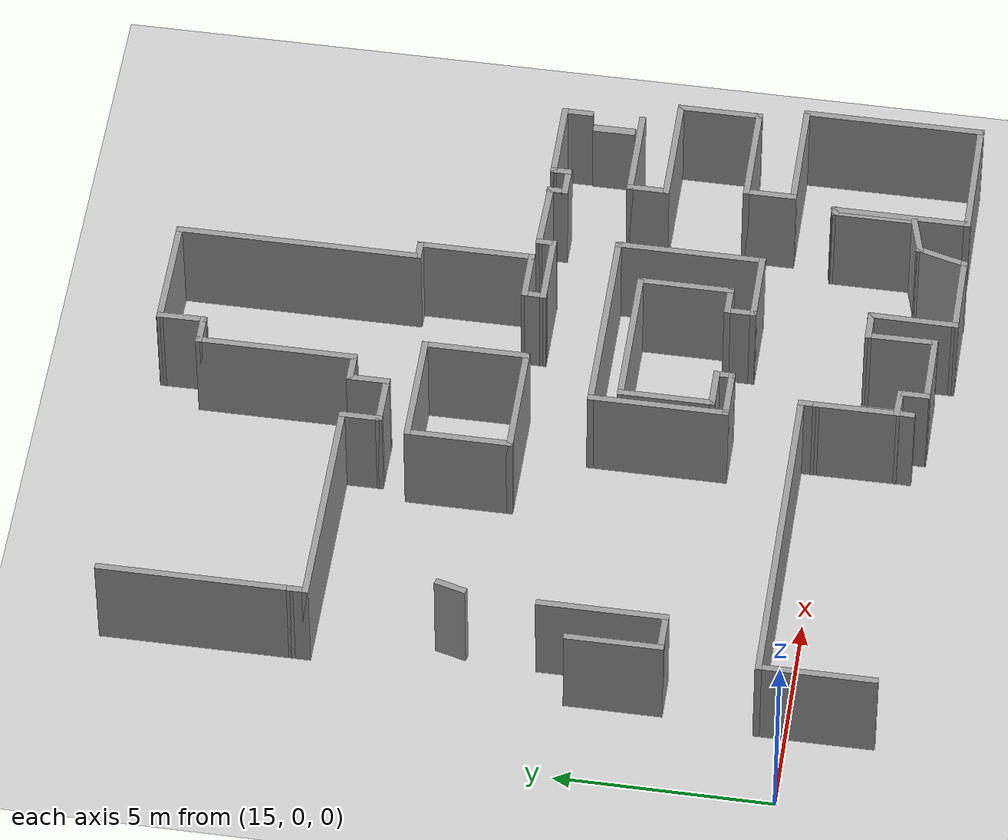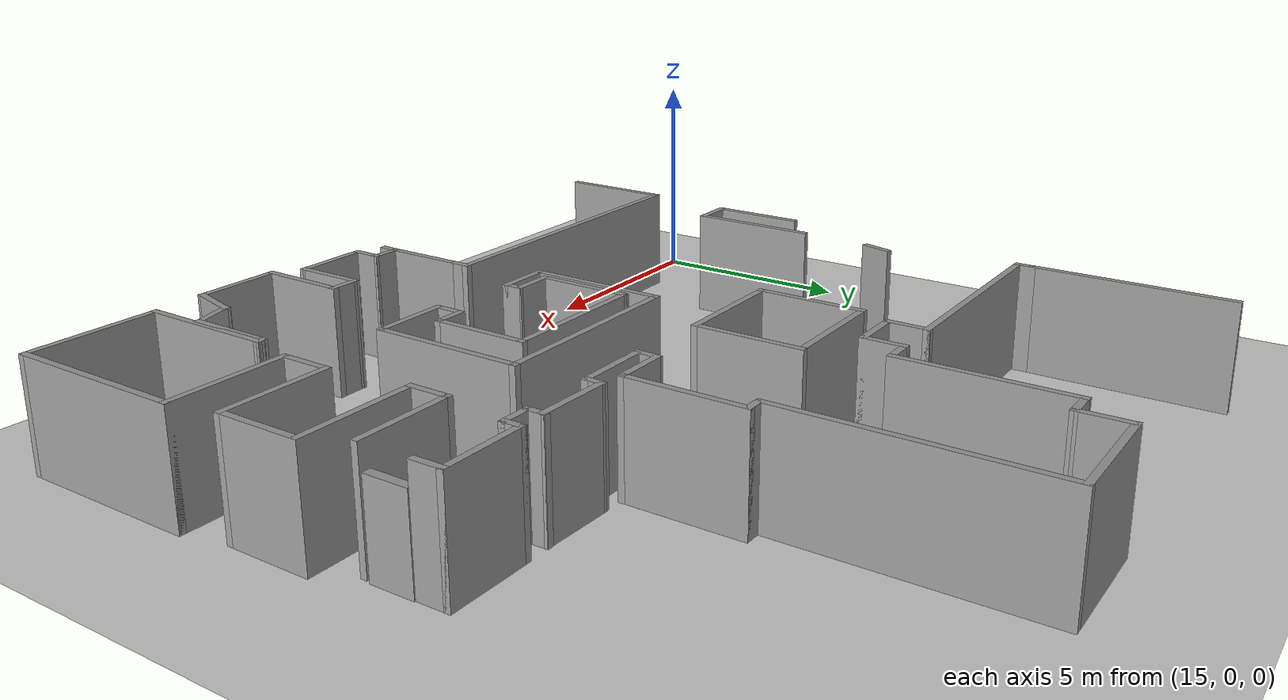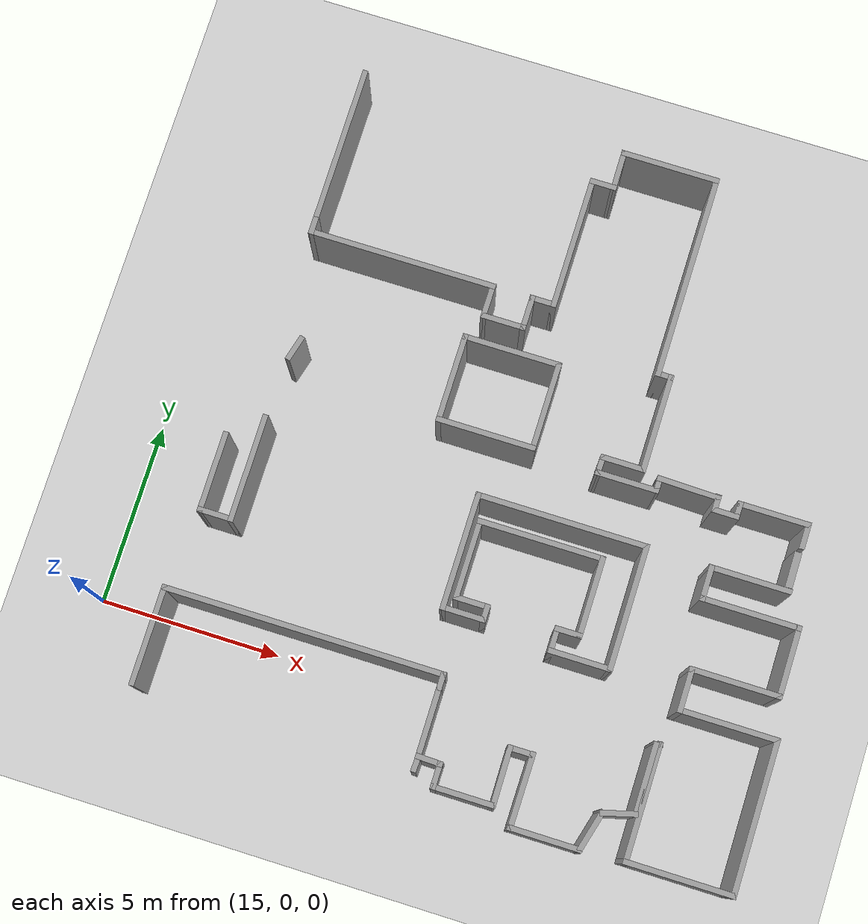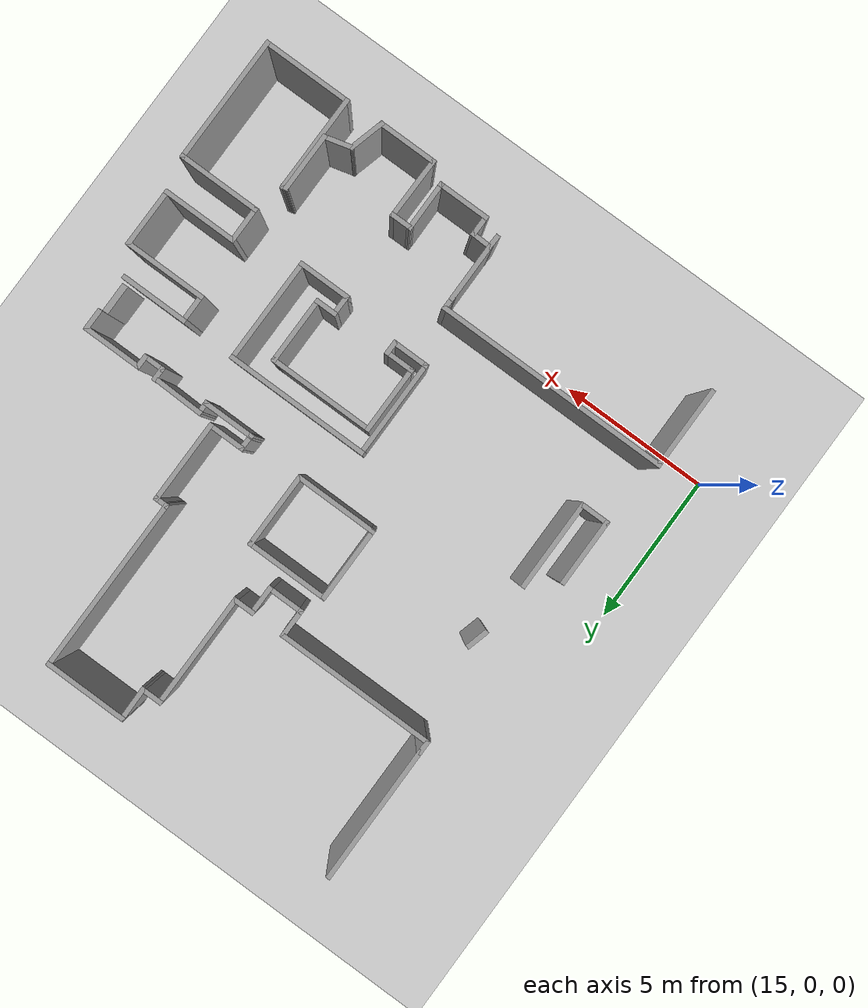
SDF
<sdf version="1.7">
 <world name="default">
  <model name="ground_plane">
   <static>1</static>
   <link name="link">
    <collision name="collision">
     <geometry><plane><normal>0 0 1</normal><size>100 100</size></plane></geometry>
     <surface><friction><ode><mu>100</mu><mu2>50</mu2></ode></friction></surface>
    </collision>
    <visual name="visual">
     <geometry><plane><normal>0 0 1</normal><size>100 100</size></plane></geometry>
     <material>
      <script><uri>file://media/materials/scripts/gazebo.material</uri><name>Gazebo/Grey</name></script>
     </material>
    </visual>
    <velocity_decay><linear>0</linear><angular>0</angular></velocity_decay>
   </link>
  </model>
  <model name="HandMade">
   <pose>-0.902363 5.97176 0 0 -0 0</pose>
   <link name="Door_2">
    <collision name="Door_2_Collision">
     <geometry><box><size>0.996178 0.2 2</size></box></geometry>
     <pose>0 0 1 0 -0 0</pose>
    </collision>
    <visual name="Door_2_Visual">
     <pose>0 0 1 0 -0 0</pose>
     <geometry><box><size>0.996178 0.2 2</size></box></geometry>
     <material>
      <script><uri>file://media/materials/scripts/gazebo.material</uri><name>Gazebo/Grey</name></script>
     </material>
    </visual>
    <pose>33.3267 0.090057 0 0 -0 1.57423</pose>
   </link>
   <link name="Wall_132">
    <collision name="Wall_132_Collision">
     <geometry><box><size>4.5 0.15 2.5</size></box></geometry>
     <pose>0 0 1.25 0 -0 0</pose>
    </collision>
    <visual name="Wall_132_Visual">
     <pose>0 0 1.25 0 -0 0</pose>
     <geometry><box><size>4.5 0.15 2.5</size></box></geometry>
     <material>
      <script><uri>file://media/materials/scripts/gazebo.material</uri><name>Gazebo/Grey</name></script>
      <ambient>1 1 1 1</ambient>
     </material>
     <meta><layer>0</layer></meta>
    </visual>
    <pose>18.4465 7.49824 0 0 -0 -1.5708</pose>
   </link>
   <link name="Wall_134">
    <collision name="Wall_134_Collision">
     <geometry><box><size>0.5 0.15 2.5</size></box></geometry>
     <pose>0 0 1.25 0 -0 0</pose>
    </collision>
    <visual name="Wall_134_Visual">
     <pose>0 0 1.25 0 -0 0</pose>
     <geometry><box><size>0.5 0.15 2.5</size></box></geometry>
     <material>
      <script><uri>file://media/materials/scripts/gazebo.material</uri><name>Gazebo/Grey</name></script>
      <ambient>1 1 1 1</ambient>
     </material>
     <meta><layer>0</layer></meta>
    </visual>
    <pose>18.4465 5.14824 0 0 -0 -1.5708</pose>
   </link>
   <link name="Wall_135">
    <collision name="Wall_135_Collision">
     <geometry><box><size>5.25 0.15 2.5</size></box></geometry>
     <pose>0 0 1.25 0 -0 0</pose>
    </collision>
    <visual name="Wall_135_Visual">
     <pose>0 0 1.25 0 -0 0</pose>
     <geometry><box><size>5.25 0.15 2.5</size></box></geometry>
     <material>
      <script><uri>file://media/materials/scripts/gazebo.material</uri><name>Gazebo/Grey</name></script>
      <ambient>1 1 1 1</ambient>
     </material>
     <meta><layer>0</layer></meta>
    </visual>
    <pose>20.9965 4.97324 0 0 -0 0</pose>
   </link>
   <link name="Wall_136">
    <collision name="Wall_136_Collision">
     <geometry><box><size>1 0.15 2.5</size></box></geometry>
     <pose>0 0 1.25 0 -0 0</pose>
    </collision>
    <visual name="Wall_136_Visual">
     <pose>0 0 1.25 0 -0 0</pose>
     <geometry><box><size>1 0.15 2.5</size></box></geometry>
     <material>
      <script><uri>file://media/materials/scripts/gazebo.material</uri><name>Gazebo/Grey</name></script>
      <ambient>1 1 1 1</ambient>
     </material>
     <meta><layer>0</layer></meta>
    </visual>
    <pose>23.5465 4.54824 0 0 -0 -1.5708</pose>
   </link>
   <link name="Wall_137">
    <collision name="Wall_137_Collision">
     <geometry><box><size>1.25 0.15 2.5</size></box></geometry>
     <pose>0 0 1.25 0 -0 0</pose>
    </collision>
    <visual name="Wall_137_Visual">
     <pose>0 0 1.25 0 -0 0</pose>
     <geometry><box><size>1.25 0.15 2.5</size></box></geometry>
     <material>
      <script><uri>file://media/materials/scripts/gazebo.material</uri><name>Gazebo/Grey</name></script>
      <ambient>1 1 1 1</ambient>
     </material>
     <meta><layer>0</layer></meta>
    </visual>
    <pose>24.0965 4.12324 0 0 -0 0</pose>
   </link>
   <link name="Wall_138">
    <collision name="Wall_138_Collision">
     <geometry><box><size>1 0.15 2.5</size></box></geometry>
     <pose>0 0 1.25 0 -0 0</pose>
    </collision>
    <visual name="Wall_138_Visual">
     <pose>0 0 1.25 0 -0 0</pose>
     <geometry><box><size>1 0.15 2.5</size></box></geometry>
     <material>
      <script><uri>file://media/materials/scripts/gazebo.material</uri><name>Gazebo/Grey</name></script>
      <ambient>1 1 1 1</ambient>
     </material>
     <meta><layer>0</layer></meta>
    </visual>
    <pose>24.6465 4.54824 0 0 -0 1.5708</pose>
   </link>
   <link name="Wall_139">
    <collision name="Wall_139_Collision">
     <geometry><box><size>0.75 0.15 2.5</size></box></geometry>
     <pose>0 0 1.25 0 -0 0</pose>
    </collision>
    <visual name="Wall_139_Visual">
     <pose>0 0 1.25 0 -0 0</pose>
     <geometry><box><size>0.75 0.15 2.5</size></box></geometry>
     <material>
      <script><uri>file://media/materials/scripts/gazebo.material</uri><name>Gazebo/Grey</name></script>
      <ambient>1 1 1 1</ambient>
     </material>
     <meta><layer>0</layer></meta>
    </visual>
    <pose>24.9465 4.97324 0 0 -0 0</pose>
   </link>
   <link name="Wall_140">
    <collision name="Wall_140_Collision">
     <geometry><box><size>3.75 0.15 2.5</size></box></geometry>
     <pose>0 0 1.25 0 -0 0</pose>
    </collision>
    <visual name="Wall_140_Visual">
     <pose>0 0 1.25 0 -0 0</pose>
     <geometry><box><size>3.75 0.15 2.5</size></box></geometry>
     <material>
      <script><uri>file://media/materials/scripts/gazebo.material</uri><name>Gazebo/Grey</name></script>
      <ambient>1 1 1 1</ambient>
     </material>
     <meta><layer>0</layer></meta>
    </visual>
    <pose>25.2465 6.77324 0 0 -0 1.5708</pose>
   </link>
   <link name="Wall_141">
    <collision name="Wall_141_Collision">
     <geometry><box><size>0.75 0.15 2.5</size></box></geometry>
     <pose>0 0 1.25 0 -0 0</pose>
    </collision>
    <visual name="Wall_141_Visual">
     <pose>0 0 1.25 0 -0 0</pose>
     <geometry><box><size>0.75 0.15 2.5</size></box></geometry>
     <material>
      <script><uri>file://media/materials/scripts/gazebo.material</uri><name>Gazebo/Grey</name></script>
      <ambient>1 1 1 1</ambient>
     </material>
     <meta><layer>0</layer></meta>
    </visual>
    <pose>25.5465 8.57324 0 0 -0 0</pose>
   </link>
   <link name="Wall_142">
    <collision name="Wall_142_Collision">
     <geometry><box><size>1.15552 0.15 2.5</size></box></geometry>
     <pose>0 0 1.25 0 -0 0</pose>
    </collision>
    <visual name="Wall_142_Visual">
     <pose>0 0 1.25 0 -0 0</pose>
     <geometry><box><size>1.15552 0.15 2.5</size></box></geometry>
     <material>
      <script><uri>file://media/materials/scripts/gazebo.material</uri><name>Gazebo/Grey</name></script>
      <ambient>1 1 1 1</ambient>
     </material>
     <meta><layer>0</layer></meta>
    </visual>
    <pose>25.8412 9.07597 0 0 -0 1.58146</pose>
   </link>
   <link name="Wall_143">
    <collision name="Wall_143_Collision">
     <geometry><box><size>2.75 0.15 2.5</size></box></geometry>
     <pose>0 0 1.25 0 -0 0</pose>
    </collision>
    <visual name="Wall_143_Visual">
     <pose>0 0 1.25 0 -0 0</pose>
     <geometry><box><size>2.75 0.15 2.5</size></box></geometry>
     <material>
      <script><uri>file://media/materials/scripts/gazebo.material</uri><name>Gazebo/Grey</name></script>
      <ambient>1 1 1 1</ambient>
     </material>
     <meta><layer>0</layer></meta>
    </visual>
    <pose>27.1358 9.58597 0 0 -0 0</pose>
   </link>
   <link name="Wall_147">
    <collision name="Wall_147_Collision">
     <geometry><box><size>5.75 0.15 2.5</size></box></geometry>
     <pose>0 0 1.25 0 -0 0</pose>
    </collision>
    <visual name="Wall_147_Visual">
     <pose>0 0 1.25 0 -0 0</pose>
     <geometry><box><size>5.75 0.15 2.5</size></box></geometry>
     <material>
      <script><uri>file://media/materials/scripts/gazebo.material</uri><name>Gazebo/Grey</name></script>
      <ambient>1 1 1 1</ambient>
     </material>
     <meta><layer>0</layer></meta>
    </visual>
    <pose>28.4358 6.78597 0 0 -0 -1.5708</pose>
   </link>
   <link name="Wall_148">
    <collision name="Wall_148_Collision">
     <geometry><box><size>0.5 0.15 2.5</size></box></geometry>
     <pose>0 0 1.25 0 -0 0</pose>
    </collision>
    <visual name="Wall_148_Visual">
     <pose>0 0 1.25 0 -0 0</pose>
     <geometry><box><size>0.5 0.15 2.5</size></box></geometry>
     <material>
      <script><uri>file://media/materials/scripts/gazebo.material</uri><name>Gazebo/Grey</name></script>
      <ambient>1 1 1 1</ambient>
     </material>
     <meta><layer>0</layer></meta>
    </visual>
    <pose>28.6108 3.98597 0 0 -0 0</pose>
   </link>
   <link name="Wall_149">
    <collision name="Wall_149_Collision">
     <geometry><box><size>2.75 0.15 2.5</size></box></geometry>
     <pose>0 0 1.25 0 -0 0</pose>
    </collision>
    <visual name="Wall_149_Visual">
     <pose>0 0 1.25 0 -0 0</pose>
     <geometry><box><size>2.75 0.15 2.5</size></box></geometry>
     <material>
      <script><uri>file://media/materials/scripts/gazebo.material</uri><name>Gazebo/Grey</name></script>
      <ambient>1 1 1 1</ambient>
     </material>
     <meta><layer>0</layer></meta>
    </visual>
    <pose>28.7858 2.68597 0 0 -0 -1.5708</pose>
   </link>
   <link name="Wall_150">
    <collision name="Wall_150_Collision">
     <geometry><box><size>1.25 0.15 2.5</size></box></geometry>
     <pose>0 0 1.25 0 -0 0</pose>
    </collision>
    <visual name="Wall_150_Visual">
     <pose>0 0 1.25 0 -0 0</pose>
     <geometry><box><size>1.25 0.15 2.5</size></box></geometry>
     <material>
      <script><uri>file://media/materials/scripts/gazebo.material</uri><name>Gazebo/Grey</name></script>
      <ambient>1 1 1 1</ambient>
     </material>
     <meta><layer>0</layer></meta>
    </visual>
    <pose>28.2358 1.38597 0 0 -0 3.14159</pose>
   </link>
   <link name="Wall_151">
    <collision name="Wall_151_Collision">
     <geometry><box><size>0.584467 0.15 2.5</size></box></geometry>
     <pose>0 0 1.25 0 -0 0</pose>
    </collision>
    <visual name="Wall_151_Visual">
     <pose>0 0 1.25 0 -0 0</pose>
     <geometry><box><size>0.584467 0.15 2.5</size></box></geometry>
     <material>
      <script><uri>file://media/materials/scripts/gazebo.material</uri><name>Gazebo/Grey</name></script>
      <ambient>1 1 1 1</ambient>
     </material>
     <meta><layer>0</layer></meta>
    </visual>
    <pose>27.679 1.16885 0 0 -0 -1.60221</pose>
   </link>
   <link name="Wall_152">
    <collision name="Wall_152_Collision">
     <geometry><box><size>1.75 0.15 2.5</size></box></geometry>
     <pose>0 0 1.25 0 -0 0</pose>
    </collision>
    <visual name="Wall_152_Visual">
     <pose>0 0 1.25 0 -0 0</pose>
     <geometry><box><size>1.75 0.15 2.5</size></box></geometry>
     <material>
      <script><uri>file://media/materials/scripts/gazebo.material</uri><name>Gazebo/Grey</name></script>
      <ambient>1 1 1 1</ambient>
     </material>
     <meta><layer>0</layer></meta>
    </visual>
    <pose>28.4722 0.951722 0 0 -0 0</pose>
   </link>
   <link name="Wall_153">
    <collision name="Wall_153_Collision">
     <geometry><box><size>0.481171 0.15 2.5</size></box></geometry>
     <pose>0 0 1.25 0 -0 0</pose>
    </collision>
    <visual name="Wall_153_Visual">
     <pose>0 0 1.25 0 -0 0</pose>
     <geometry><box><size>0.481171 0.15 2.5</size></box></geometry>
     <material>
      <script><uri>file://media/materials/scripts/gazebo.material</uri><name>Gazebo/Grey</name></script>
      <ambient>1 1 1 1</ambient>
     </material>
     <meta><layer>0</layer></meta>
    </visual>
    <pose>29.2722 1.11731 0 0 -0 1.57041</pose>
   </link>
   <link name="Wall_154">
    <collision name="Wall_154_Collision">
     <geometry><box><size>1.75 0.15 2.5</size></box></geometry>
     <pose>0 0 1.25 0 -0 0</pose>
    </collision>
    <visual name="Wall_154_Visual">
     <pose>0 0 1.25 0 -0 0</pose>
     <geometry><box><size>1.75 0.15 2.5</size></box></geometry>
     <material>
      <script><uri>file://media/materials/scripts/gazebo.material</uri><name>Gazebo/Grey</name></script>
      <ambient>1 1 1 1</ambient>
     </material>
     <meta><layer>0</layer></meta>
    </visual>
    <pose>30.0723 1.26471 0 0 -0 -0.022723</pose>
   </link>
   <link name="Wall_155">
    <collision name="Wall_155_Collision">
     <geometry><box><size>0.5 0.15 2.5</size></box></geometry>
     <pose>0 0 1.25 0 -0 0</pose>
    </collision>
    <visual name="Wall_155_Visual">
     <pose>0 0 1.25 0 -0 0</pose>
     <geometry><box><size>0.5 0.15 2.5</size></box></geometry>
     <material>
      <script><uri>file://media/materials/scripts/gazebo.material</uri><name>Gazebo/Grey</name></script>
      <ambient>1 1 1 1</ambient>
     </material>
     <meta><layer>0</layer></meta>
    </visual>
    <pose>30.8723 1.08608 0 0 -0 -1.5708</pose>
   </link>
   <link name="Wall_159">
    <collision name="Wall_159_Collision">
     <geometry><box><size>0.75 0.15 2.5</size></box></geometry>
     <pose>0 0 1.25 0 -0 0</pose>
    </collision>
    <visual name="Wall_159_Visual">
     <pose>0 0 1.25 0 -0 0</pose>
     <geometry><box><size>0.75 0.15 2.5</size></box></geometry>
     <material>
      <script><uri>file://media/materials/scripts/gazebo.material</uri><name>Gazebo/Grey</name></script>
      <ambient>1 1 1 1</ambient>
     </material>
     <meta><layer>0</layer></meta>
    </visual>
    <pose>31.1723 0.911076 0 0 -0 0</pose>
   </link>
   <link name="Wall_160">
    <collision name="Wall_160_Collision">
     <geometry><box><size>0.5 0.15 2.5</size></box></geometry>
     <pose>0 0 1.25 0 -0 0</pose>
    </collision>
    <visual name="Wall_160_Visual">
     <pose>0 0 1.25 0 -0 0</pose>
     <geometry><box><size>0.5 0.15 2.5</size></box></geometry>
     <material>
      <script><uri>file://media/materials/scripts/gazebo.material</uri><name>Gazebo/Grey</name></script>
      <ambient>1 1 1 1</ambient>
     </material>
     <meta><layer>0</layer></meta>
    </visual>
    <pose>31.4723 1.08608 0 0 -0 1.5708</pose>
   </link>
   <link name="Wall_161">
    <collision name="Wall_161_Collision">
     <geometry><box><size>2 0.15 2.5</size></box></geometry>
     <pose>0 0 1.25 0 -0 0</pose>
    </collision>
    <visual name="Wall_161_Visual">
     <pose>0 0 1.25 0 -0 0</pose>
     <geometry><box><size>2 0.15 2.5</size></box></geometry>
     <material>
      <script><uri>file://media/materials/scripts/gazebo.material</uri><name>Gazebo/Grey</name></script>
      <ambient>1 1 1 1</ambient>
     </material>
     <meta><layer>0</layer></meta>
    </visual>
    <pose>32.3973 1.26108 0 0 -0 0</pose>
   </link>
   <link name="Wall_162">
    <collision name="Wall_162_Collision">
     <geometry><box><size>0.75 0.15 2.5</size></box></geometry>
     <pose>0 0 1.25 0 -0 0</pose>
    </collision>
    <visual name="Wall_162_Visual">
     <pose>0 0 1.25 0 -0 0</pose>
     <geometry><box><size>0.75 0.15 2.5</size></box></geometry>
     <material>
      <script><uri>file://media/materials/scripts/gazebo.material</uri><name>Gazebo/Grey</name></script>
      <ambient>1 1 1 1</ambient>
     </material>
     <meta><layer>0</layer></meta>
    </visual>
    <pose>33.3223 0.961076 0 0 -0 -1.5708</pose>
   </link>
   <link name="Wall_164">
    <collision name="Wall_164_Collision">
     <geometry><box><size>2.25 0.15 2.5</size></box></geometry>
     <pose>0 0 1.25 0 -0 0</pose>
    </collision>
    <visual name="Wall_164_Visual">
     <pose>0 0 1.25 0 -0 0</pose>
     <geometry><box><size>2.25 0.15 2.5</size></box></geometry>
     <material>
      <script><uri>file://media/materials/scripts/gazebo.material</uri><name>Gazebo/Grey</name></script>
      <ambient>1 1 1 1</ambient>
     </material>
     <meta><layer>0</layer></meta>
    </visual>
    <pose>32.2665 -0.573745 0 0 -0 0</pose>
   </link>
   <link name="Wall_166">
    <collision name="Wall_166_Collision">
     <geometry><box><size>1 0.15 2.5</size></box></geometry>
     <pose>0 0 1.25 0 -0 0</pose>
    </collision>
    <visual name="Wall_166_Visual">
     <pose>0 0 1.25 0 -0 0</pose>
     <geometry><box><size>1 0.15 2.5</size></box></geometry>
     <material>
      <script><uri>file://media/materials/scripts/gazebo.material</uri><name>Gazebo/Grey</name></script>
      <ambient>1 1 1 1</ambient>
     </material>
     <meta><layer>0</layer></meta>
    </visual>
    <pose>31.2165 -0.998745 0 0 -0 -1.5708</pose>
   </link>
   <link name="Wall_167">
    <collision name="Wall_167_Collision">
     <geometry><box><size>2.75 0.15 2.5</size></box></geometry>
     <pose>0 0 1.25 0 -0 0</pose>
    </collision>
    <visual name="Wall_167_Visual">
     <pose>0 0 1.25 0 -0 0</pose>
     <geometry><box><size>2.75 0.15 2.5</size></box></geometry>
     <material>
      <script><uri>file://media/materials/scripts/gazebo.material</uri><name>Gazebo/Grey</name></script>
      <ambient>1 1 1 1</ambient>
     </material>
     <meta><layer>0</layer></meta>
    </visual>
    <pose>32.5165 -1.42375 0 0 -0 0</pose>
   </link>
   <link name="Wall_168">
    <collision name="Wall_168_Collision">
     <geometry><box><size>2 0.15 2.5</size></box></geometry>
     <pose>0 0 1.25 0 -0 0</pose>
    </collision>
    <visual name="Wall_168_Visual">
     <pose>0 0 1.25 0 -0 0</pose>
     <geometry><box><size>2 0.15 2.5</size></box></geometry>
     <material>
      <script><uri>file://media/materials/scripts/gazebo.material</uri><name>Gazebo/Grey</name></script>
      <ambient>1 1 1 1</ambient>
     </material>
     <meta><layer>0</layer></meta>
    </visual>
    <pose>33.8165 -2.34875 0 0 -0 -1.5708</pose>
   </link>
   <link name="Wall_169">
    <collision name="Wall_169_Collision">
     <geometry><box><size>2.5 0.15 2.5</size></box></geometry>
     <pose>0 0 1.25 0 -0 0</pose>
    </collision>
    <visual name="Wall_169_Visual">
     <pose>0 0 1.25 0 -0 0</pose>
     <geometry><box><size>2.5 0.15 2.5</size></box></geometry>
     <material>
      <script><uri>file://media/materials/scripts/gazebo.material</uri><name>Gazebo/Grey</name></script>
      <ambient>1 1 1 1</ambient>
     </material>
     <meta><layer>0</layer></meta>
    </visual>
    <pose>32.6415 -3.27374 0 0 -0 3.14159</pose>
   </link>
   <link name="Wall_170">
    <collision name="Wall_170_Collision">
     <geometry><box><size>1.25 0.15 2.5</size></box></geometry>
     <pose>0 0 1.25 0 -0 0</pose>
    </collision>
    <visual name="Wall_170_Visual">
     <pose>0 0 1.25 0 -0 0</pose>
     <geometry><box><size>1.25 0.15 2.5</size></box></geometry>
     <material>
      <script><uri>file://media/materials/scripts/gazebo.material</uri><name>Gazebo/Grey</name></script>
      <ambient>1 1 1 1</ambient>
     </material>
     <meta><layer>0</layer></meta>
    </visual>
    <pose>31.4665 -3.82375 0 0 -0 -1.5708</pose>
   </link>
   <link name="Wall_171">
    <collision name="Wall_171_Collision">
     <geometry><box><size>2.75 0.15 2.5</size></box></geometry>
     <pose>0 0 1.25 0 -0 0</pose>
    </collision>
    <visual name="Wall_171_Visual">
     <pose>0 0 1.25 0 -0 0</pose>
     <geometry><box><size>2.75 0.15 2.5</size></box></geometry>
     <material>
      <script><uri>file://media/materials/scripts/gazebo.material</uri><name>Gazebo/Grey</name></script>
      <ambient>1 1 1 1</ambient>
     </material>
     <meta><layer>0</layer></meta>
    </visual>
    <pose>32.7665 -4.37375 0 0 -0 0</pose>
   </link>
   <link name="Wall_172">
    <collision name="Wall_172_Collision">
     <geometry><box><size>4.25 0.15 2.5</size></box></geometry>
     <pose>0 0 1.25 0 -0 0</pose>
    </collision>
    <visual name="Wall_172_Visual">
     <pose>0 0 1.25 0 -0 0</pose>
     <geometry><box><size>4.25 0.15 2.5</size></box></geometry>
     <material>
      <script><uri>file://media/materials/scripts/gazebo.material</uri><name>Gazebo/Grey</name></script>
      <ambient>1 1 1 1</ambient>
     </material>
     <meta><layer>0</layer></meta>
    </visual>
    <pose>34.0665 -6.42375 0 0 -0 -1.5708</pose>
   </link>
   <link name="Wall_173">
    <collision name="Wall_173_Collision">
     <geometry><box><size>3 0.15 2.5</size></box></geometry>
     <pose>0 0 1.25 0 -0 0</pose>
    </collision>
    <visual name="Wall_173_Visual">
     <pose>0 0 1.25 0 -0 0</pose>
     <geometry><box><size>3 0.15 2.5</size></box></geometry>
     <material>
      <script><uri>file://media/materials/scripts/gazebo.material</uri><name>Gazebo/Grey</name></script>
      <ambient>1 1 1 1</ambient>
     </material>
     <meta><layer>0</layer></meta>
    </visual>
    <pose>32.6415 -8.47374 0 0 -0 3.14159</pose>
   </link>
   <link name="Wall_174">
    <collision name="Wall_174_Collision">
     <geometry><box><size>3.25 0.15 2.5</size></box></geometry>
     <pose>0 0 1.25 0 -0 0</pose>
    </collision>
    <visual name="Wall_174_Visual">
     <pose>0 0 1.25 0 -0 0</pose>
     <geometry><box><size>3.25 0.15 2.5</size></box></geometry>
     <material>
      <script><uri>file://media/materials/scripts/gazebo.material</uri><name>Gazebo/Grey</name></script>
      <ambient>1 1 1 1</ambient>
     </material>
     <meta><layer>0</layer></meta>
    </visual>
    <pose>31.2165 -6.92375 0 0 -0 1.5708</pose>
   </link>
   <link name="Wall_175">
    <collision name="Wall_175_Collision">
     <geometry><box><size>0.25 0.15 2.5</size></box></geometry>
     <pose>0 0 1.25 0 -0 0</pose>
    </collision>
    <visual name="Wall_175_Visual">
     <pose>0 0 1.25 0 -0 0</pose>
     <geometry><box><size>0.25 0.15 2.5</size></box></geometry>
     <material>
      <script><uri>file://media/materials/scripts/gazebo.material</uri><name>Gazebo/Grey</name></script>
      <ambient>1 1 1 1</ambient>
     </material>
     <meta><layer>0</layer></meta>
    </visual>
    <pose>31.1682 -5.38669 0 0 -0 -2.87979</pose>
   </link>
   <link name="Wall_176">
    <collision name="Wall_176_Collision">
     <geometry><box><size>2 0.15 2.5</size></box></geometry>
     <pose>0 0 1.25 0 -0 0</pose>
    </collision>
    <visual name="Wall_176_Visual">
     <pose>0 0 1.25 0 -0 0</pose>
     <geometry><box><size>2 0.15 2.5</size></box></geometry>
     <material>
      <script><uri>file://media/materials/scripts/gazebo.material</uri><name>Gazebo/Grey</name></script>
      <ambient>1 1 1 1</ambient>
     </material>
     <meta><layer>0</layer></meta>
    </visual>
    <pose>31.1199 -6.32463 0 0 -0 -1.5708</pose>
   </link>
   <link name="Wall_177">
    <collision name="Wall_177_Collision">
     <geometry><box><size>1 0.15 2.5</size></box></geometry>
     <pose>0 0 1.25 0 -0 0</pose>
    </collision>
    <visual name="Wall_177_Visual">
     <pose>0 0 1.25 0 -0 0</pose>
     <geometry><box><size>1 0.15 2.5</size></box></geometry>
     <material>
      <script><uri>file://media/materials/scripts/gazebo.material</uri><name>Gazebo/Grey</name></script>
      <ambient>1 1 1 1</ambient>
     </material>
     <meta><layer>0</layer></meta>
    </visual>
    <pose>30.7094 -7.35963 0 0 -0 -2.87979</pose>
   </link>
   <link name="Wall_178">
    <collision name="Wall_178_Collision">
     <geometry><box><size>1.25 0.15 2.5</size></box></geometry>
     <pose>0 0 1.25 0 -0 0</pose>
    </collision>
    <visual name="Wall_178_Visual">
     <pose>0 0 1.25 0 -0 0</pose>
     <geometry><box><size>1.25 0.15 2.5</size></box></geometry>
     <material>
      <script><uri>file://media/materials/scripts/gazebo.material</uri><name>Gazebo/Grey</name></script>
      <ambient>1 1 1 1</ambient>
     </material>
     <meta><layer>0</layer></meta>
    </visual>
    <pose>30.1565 -8.00088 0 0 -0 -1.8326</pose>
   </link>
   <link name="Wall_179">
    <collision name="Wall_179_Collision">
     <geometry><box><size>2 0.15 2.5</size></box></geometry>
     <pose>0 0 1.25 0 -0 0</pose>
    </collision>
    <visual name="Wall_179_Visual">
     <pose>0 0 1.25 0 -0 0</pose>
     <geometry><box><size>2 0.15 2.5</size></box></geometry>
     <material>
      <script><uri>file://media/materials/scripts/gazebo.material</uri><name>Gazebo/Grey</name></script>
      <ambient>1 1 1 1</ambient>
     </material>
     <meta><layer>0</layer></meta>
    </visual>
    <pose>29.0892 -8.53214 0 0 -0 3.14159</pose>
   </link>
   <link name="Wall_180">
    <collision name="Wall_180_Collision">
     <geometry><box><size>2.0945 0.15 2.5</size></box></geometry>
     <pose>0 0 1.25 0 -0 0</pose>
    </collision>
    <visual name="Wall_180_Visual">
     <pose>0 0 1.25 0 -0 0</pose>
     <geometry><box><size>2.0945 0.15 2.5</size></box></geometry>
     <material>
      <script><uri>file://media/materials/scripts/gazebo.material</uri><name>Gazebo/Grey</name></script>
      <ambient>1 1 1 1</ambient>
     </material>
     <meta><layer>0</layer></meta>
    </visual>
    <pose>28.1715 -7.5599 0 0 -0 1.56332</pose>
   </link>
   <link name="Wall_181">
    <collision name="Wall_181_Collision">
     <geometry><box><size>0.75 0.15 2.5</size></box></geometry>
     <pose>0 0 1.25 0 -0 0</pose>
    </collision>
    <visual name="Wall_181_Visual">
     <pose>0 0 1.25 0 -0 0</pose>
     <geometry><box><size>0.75 0.15 2.5</size></box></geometry>
     <material>
      <script><uri>file://media/materials/scripts/gazebo.material</uri><name>Gazebo/Grey</name></script>
      <ambient>1 1 1 1</ambient>
     </material>
     <meta><layer>0</layer></meta>
    </visual>
    <pose>27.8715 -6.59492 0 0 -0 3.14159</pose>
   </link>
   <link name="Wall_182">
    <collision name="Wall_182_Collision">
     <geometry><box><size>1.68199 0.15 2.5</size></box></geometry>
     <pose>0 0 1.25 0 -0 0</pose>
    </collision>
    <visual name="Wall_182_Visual">
     <pose>0 0 1.25 0 -0 0</pose>
     <geometry><box><size>1.68199 0.15 2.5</size></box></geometry>
     <material>
      <script><uri>file://media/materials/scripts/gazebo.material</uri><name>Gazebo/Grey</name></script>
      <ambient>1 1 1 1</ambient>
     </material>
     <meta><layer>0</layer></meta>
    </visual>
    <pose>27.5781 -7.36089 0 0 -0 -1.5622</pose>
   </link>
   <link name="Wall_183">
    <collision name="Wall_183_Collision">
     <geometry><box><size>1.75 0.15 2.5</size></box></geometry>
     <pose>0 0 1.25 0 -0 0</pose>
    </collision>
    <visual name="Wall_183_Visual">
     <pose>0 0 1.25 0 -0 0</pose>
     <geometry><box><size>1.75 0.15 2.5</size></box></geometry>
     <material>
      <script><uri>file://media/materials/scripts/gazebo.material</uri><name>Gazebo/Grey</name></script>
      <ambient>1 1 1 1</ambient>
     </material>
     <meta><layer>0</layer></meta>
    </visual>
    <pose>26.7846 -8.12685 0 0 -0 3.14159</pose>
   </link>
   <link name="Wall_184">
    <collision name="Wall_184_Collision">
     <geometry><box><size>0.75 0.15 2.5</size></box></geometry>
     <pose>0 0 1.25 0 -0 0</pose>
    </collision>
    <visual name="Wall_184_Visual">
     <pose>0 0 1.25 0 -0 0</pose>
     <geometry><box><size>0.75 0.15 2.5</size></box></geometry>
     <material>
      <script><uri>file://media/materials/scripts/gazebo.material</uri><name>Gazebo/Grey</name></script>
      <ambient>1 1 1 1</ambient>
     </material>
     <meta><layer>0</layer></meta>
    </visual>
    <pose>25.9846 -7.82685 0 0 -0 1.5708</pose>
   </link>
   <link name="Wall_185">
    <collision name="Wall_185_Collision">
     <geometry><box><size>0.744335 0.15 2.5</size></box></geometry>
     <pose>0 0 1.25 0 -0 0</pose>
    </collision>
    <visual name="Wall_185_Visual">
     <pose>0 0 1.25 0 -0 0</pose>
     <geometry><box><size>0.744335 0.15 2.5</size></box></geometry>
     <material>
      <script><uri>file://media/materials/scripts/gazebo.material</uri><name>Gazebo/Grey</name></script>
      <ambient>1 1 1 1</ambient>
     </material>
     <meta><layer>0</layer></meta>
    </visual>
    <pose>25.6877 -7.51649 0 0 -0 3.10673</pose>
   </link>
   <link name="Wall_186">
    <collision name="Wall_186_Collision">
     <geometry><box><size>1.99049 0.15 2.5</size></box></geometry>
     <pose>0 0 1.25 0 -0 0</pose>
    </collision>
    <visual name="Wall_186_Visual">
     <pose>0 0 1.25 0 -0 0</pose>
     <geometry><box><size>1.99049 0.15 2.5</size></box></geometry>
     <material>
      <script><uri>file://media/materials/scripts/gazebo.material</uri><name>Gazebo/Grey</name></script>
      <ambient>1 1 1 1</ambient>
     </material>
     <meta><layer>0</layer></meta>
    </visual>
    <pose>25.3859 -6.58594 0 0 -0 1.57602</pose>
   </link>
   <link name="Wall_190">
    <collision name="Wall_190_Collision">
     <geometry><box><size>0.495458 0.15 2.5</size></box></geometry>
     <pose>0 0 1.25 0 -0 0</pose>
    </collision>
    <visual name="Wall_190_Visual">
     <pose>0 0 1.25 0 -0 0</pose>
     <geometry><box><size>0.495458 0.15 2.5</size></box></geometry>
     <material>
      <script><uri>file://media/materials/scripts/gazebo.material</uri><name>Gazebo/Grey</name></script>
      <ambient>1 1 1 1</ambient>
     </material>
     <meta><layer>0</layer></meta>
    </visual>
    <pose>25.393 -7.67871 0 0 -0 1.52869</pose>
   </link>
   <link name="Wall_384">
    <collision name="Wall_384_Collision">
     <geometry><box><size>2.25 0.15 2.5</size></box></geometry>
     <pose>0 0 1.25 0 -0 0</pose>
    </collision>
    <visual name="Wall_384_Visual">
     <pose>0 0 1.25 0 -0 0</pose>
     <geometry><box><size>2.25 0.15 2.5</size></box></geometry>
     <material>
      <script><uri>file://media/materials/scripts/gazebo.material</uri><name>Gazebo/Grey</name></script>
      <ambient>1 1 1 1</ambient>
     </material>
     <meta><layer>0</layer></meta>
    </visual>
    <pose>18.0083 -2.04285 0 0 -0 -1.5708</pose>
   </link>
   <link name="Wall_385">
    <collision name="Wall_385_Collision">
     <geometry><box><size>1 0.15 2.5</size></box></geometry>
     <pose>0 0 1.25 0 -0 0</pose>
    </collision>
    <visual name="Wall_385_Visual">
     <pose>0 0 1.25 0 -0 0</pose>
     <geometry><box><size>1 0.15 2.5</size></box></geometry>
     <material>
      <script><uri>file://media/materials/scripts/gazebo.material</uri><name>Gazebo/Grey</name></script>
      <ambient>1 1 1 1</ambient>
     </material>
     <meta><layer>0</layer></meta>
    </visual>
    <pose>18.4333 -3.09285 0 0 -0 0</pose>
   </link>
   <link name="Wall_386">
    <collision name="Wall_386_Collision">
     <geometry><box><size>3 0.15 2.5</size></box></geometry>
     <pose>0 0 1.25 0 -0 0</pose>
    </collision>
    <visual name="Wall_386_Visual">
     <pose>0 0 1.25 0 -0 0</pose>
     <geometry><box><size>3 0.15 2.5</size></box></geometry>
     <material>
      <script><uri>file://media/materials/scripts/gazebo.material</uri><name>Gazebo/Grey</name></script>
      <ambient>1 1 1 1</ambient>
     </material>
     <meta><layer>0</layer></meta>
    </visual>
    <pose>18.8583 -1.66785 0 0 -0 1.5708</pose>
   </link>
   <link name="Wall_402">
    <collision name="Wall_402_Collision">
     <geometry><box><size>0.75 0.15 2.5</size></box></geometry>
     <pose>0 0 1.25 0 -0 0</pose>
    </collision>
    <visual name="Wall_402_Visual">
     <pose>0 0 1.25 0 -0 0</pose>
     <geometry><box><size>0.75 0.15 2.5</size></box></geometry>
     <material>
      <script><uri>file://media/materials/scripts/gazebo.material</uri><name>Gazebo/Grey</name></script>
      <ambient>1 1 1 1</ambient>
     </material>
     <meta><layer>0</layer></meta>
    </visual>
    <pose>19.0287 1.77883 0 0 -0 1.309</pose>
   </link>
   <link name="Wall_411">
    <collision name="Wall_411_Collision">
     <geometry><box><size>2.75 0.15 2.5</size></box></geometry>
     <pose>0 0 1.25 0 -0 0</pose>
    </collision>
    <visual name="Wall_411_Visual">
     <pose>0 0 1.25 0 -0 0</pose>
     <geometry><box><size>2.75 0.15 2.5</size></box></geometry>
     <material>
      <script><uri>file://media/materials/scripts/gazebo.material</uri><name>Gazebo/Grey</name></script>
      <ambient>1 1 1 1</ambient>
     </material>
     <meta><layer>0</layer></meta>
    </visual>
    <pose>24.551 3.42562 0 0 -0 0</pose>
   </link>
   <link name="Wall_412">
    <collision name="Wall_412_Collision">
     <geometry><box><size>2.5 0.15 2.5</size></box></geometry>
     <pose>0 0 1.25 0 -0 0</pose>
    </collision>
    <visual name="Wall_412_Visual">
     <pose>0 0 1.25 0 -0 0</pose>
     <geometry><box><size>2.5 0.15 2.5</size></box></geometry>
     <material>
      <script><uri>file://media/materials/scripts/gazebo.material</uri><name>Gazebo/Grey</name></script>
      <ambient>1 1 1 1</ambient>
     </material>
     <meta><layer>0</layer></meta>
    </visual>
    <pose>25.851 2.25062 0 0 -0 -1.5708</pose>
   </link>
   <link name="Wall_413">
    <collision name="Wall_413_Collision">
     <geometry><box><size>2.75 0.15 2.5</size></box></geometry>
     <pose>0 0 1.25 0 -0 0</pose>
    </collision>
    <visual name="Wall_413_Visual">
     <pose>0 0 1.25 0 -0 0</pose>
     <geometry><box><size>2.75 0.15 2.5</size></box></geometry>
     <material>
      <script><uri>file://media/materials/scripts/gazebo.material</uri><name>Gazebo/Grey</name></script>
      <ambient>1 1 1 1</ambient>
     </material>
     <meta><layer>0</layer></meta>
    </visual>
    <pose>24.551 1.07562 0 0 -0 3.14159</pose>
   </link>
   <link name="Wall_414">
    <collision name="Wall_414_Collision">
     <geometry><box><size>2.5 0.15 2.5</size></box></geometry>
     <pose>0 0 1.25 0 -0 0</pose>
    </collision>
    <visual name="Wall_414_Visual">
     <pose>0 0 1.25 0 -0 0</pose>
     <geometry><box><size>2.5 0.15 2.5</size></box></geometry>
     <material>
      <script><uri>file://media/materials/scripts/gazebo.material</uri><name>Gazebo/Grey</name></script>
      <ambient>1 1 1 1</ambient>
     </material>
     <meta><layer>0</layer></meta>
    </visual>
    <pose>23.251 2.25062 0 0 -0 1.5708</pose>
   </link>
   <link name="Wall_420">
    <collision name="Wall_420_Collision">
     <geometry><box><size>0.5 0.15 2.5</size></box></geometry>
     <pose>0 0 1.25 0 -0 0</pose>
    </collision>
    <visual name="Wall_420_Visual">
     <pose>0 0 1.25 0 -0 0</pose>
     <geometry><box><size>0.5 0.15 2.5</size></box></geometry>
     <material>
      <script><uri>file://media/materials/scripts/gazebo.material</uri><name>Gazebo/Grey</name></script>
      <ambient>1 1 1 1</ambient>
     </material>
     <meta><layer>0</layer></meta>
    </visual>
    <pose>25.9461 -3.47779 0 0 -0 1.5708</pose>
   </link>
   <link name="Wall_421">
    <collision name="Wall_421_Collision">
     <geometry><box><size>1 0.15 2.5</size></box></geometry>
     <pose>0 0 1.25 0 -0 0</pose>
    </collision>
    <visual name="Wall_421_Visual">
     <pose>0 0 1.25 0 -0 0</pose>
     <geometry><box><size>1 0.15 2.5</size></box></geometry>
     <material>
      <script><uri>file://media/materials/scripts/gazebo.material</uri><name>Gazebo/Grey</name></script>
      <ambient>1 1 1 1</ambient>
     </material>
     <meta><layer>0</layer></meta>
    </visual>
    <pose>25.5211 -3.30279 0 0 -0 3.14159</pose>
   </link>
   <link name="Wall_422">
    <collision name="Wall_422_Collision">
     <geometry><box><size>2.25 0.15 2.5</size></box></geometry>
     <pose>0 0 1.25 0 -0 0</pose>
    </collision>
    <visual name="Wall_422_Visual">
     <pose>0 0 1.25 0 -0 0</pose>
     <geometry><box><size>2.25 0.15 2.5</size></box></geometry>
     <material>
      <script><uri>file://media/materials/scripts/gazebo.material</uri><name>Gazebo/Grey</name></script>
      <ambient>1 1 1 1</ambient>
     </material>
     <meta><layer>0</layer></meta>
    </visual>
    <pose>25.0961 -2.25279 0 0 -0 1.5708</pose>
   </link>
   <link name="Wall_423">
    <collision name="Wall_423_Collision">
     <geometry><box><size>3.5 0.15 2.5</size></box></geometry>
     <pose>0 0 1.25 0 -0 0</pose>
    </collision>
    <visual name="Wall_423_Visual">
     <pose>0 0 1.25 0 -0 0</pose>
     <geometry><box><size>3.5 0.15 2.5</size></box></geometry>
     <material>
      <script><uri>file://media/materials/scripts/gazebo.material</uri><name>Gazebo/Grey</name></script>
      <ambient>1 1 1 1</ambient>
     </material>
     <meta><layer>0</layer></meta>
    </visual>
    <pose>26.7711 -1.20279 0 0 -0 0</pose>
   </link>
   <link name="Wall_424">
    <collision name="Wall_424_Collision">
     <geometry><box><size>2.25 0.15 2.5</size></box></geometry>
     <pose>0 0 1.25 0 -0 0</pose>
    </collision>
    <visual name="Wall_424_Visual">
     <pose>0 0 1.25 0 -0 0</pose>
     <geometry><box><size>2.25 0.15 2.5</size></box></geometry>
     <material>
      <script><uri>file://media/materials/scripts/gazebo.material</uri><name>Gazebo/Grey</name></script>
      <ambient>1 1 1 1</ambient>
     </material>
     <meta><layer>0</layer></meta>
    </visual>
    <pose>28.4461 -2.25279 0 0 -0 -1.5708</pose>
   </link>
   <link name="Wall_425">
    <collision name="Wall_425_Collision">
     <geometry><box><size>0.75 0.15 2.5</size></box></geometry>
     <pose>0 0 1.25 0 -0 0</pose>
    </collision>
    <visual name="Wall_425_Visual">
     <pose>0 0 1.25 0 -0 0</pose>
     <geometry><box><size>0.75 0.15 2.5</size></box></geometry>
     <material>
      <script><uri>file://media/materials/scripts/gazebo.material</uri><name>Gazebo/Grey</name></script>
      <ambient>1 1 1 1</ambient>
     </material>
     <meta><layer>0</layer></meta>
    </visual>
    <pose>28.1461 -3.30279 0 0 -0 3.14159</pose>
   </link>
   <link name="Wall_426">
    <collision name="Wall_426_Collision">
     <geometry><box><size>0.75 0.15 2.5</size></box></geometry>
     <pose>0 0 1.25 0 -0 0</pose>
    </collision>
    <visual name="Wall_426_Visual">
     <pose>0 0 1.25 0 -0 0</pose>
     <geometry><box><size>0.75 0.15 2.5</size></box></geometry>
     <material>
      <script><uri>file://media/materials/scripts/gazebo.material</uri><name>Gazebo/Grey</name></script>
      <ambient>1 1 1 1</ambient>
     </material>
     <meta><layer>0</layer></meta>
    </visual>
    <pose>27.8461 -3.60279 0 0 -0 -1.5708</pose>
   </link>
   <link name="Wall_427">
    <collision name="Wall_427_Collision">
     <geometry><box><size>1.75 0.15 2.5</size></box></geometry>
     <pose>0 0 1.25 0 -0 0</pose>
    </collision>
    <visual name="Wall_427_Visual">
     <pose>0 0 1.25 0 -0 0</pose>
     <geometry><box><size>1.75 0.15 2.5</size></box></geometry>
     <material>
      <script><uri>file://media/materials/scripts/gazebo.material</uri><name>Gazebo/Grey</name></script>
      <ambient>1 1 1 1</ambient>
     </material>
     <meta><layer>0</layer></meta>
    </visual>
    <pose>28.6461 -3.90279 0 0 -0 0</pose>
   </link>
   <link name="Wall_428">
    <collision name="Wall_428_Collision">
     <geometry><box><size>3.5 0.15 2.5</size></box></geometry>
     <pose>0 0 1.25 0 -0 0</pose>
    </collision>
    <visual name="Wall_428_Visual">
     <pose>0 0 1.25 0 -0 0</pose>
     <geometry><box><size>3.5 0.15 2.5</size></box></geometry>
     <material>
      <script><uri>file://media/materials/scripts/gazebo.material</uri><name>Gazebo/Grey</name></script>
      <ambient>1 1 1 1</ambient>
     </material>
     <meta><layer>0</layer></meta>
    </visual>
    <pose>29.4461 -2.22779 0 0 -0 1.5708</pose>
   </link>
   <link name="Wall_429">
    <collision name="Wall_429_Collision">
     <geometry><box><size>4.75 0.15 2.5</size></box></geometry>
     <pose>0 0 1.25 0 -0 0</pose>
    </collision>
    <visual name="Wall_429_Visual">
     <pose>0 0 1.25 0 -0 0</pose>
     <geometry><box><size>4.75 0.15 2.5</size></box></geometry>
     <material>
      <script><uri>file://media/materials/scripts/gazebo.material</uri><name>Gazebo/Grey</name></script>
      <ambient>1 1 1 1</ambient>
     </material>
     <meta><layer>0</layer></meta>
    </visual>
    <pose>27.1461 -0.552791 0 0 -0 3.14159</pose>
   </link>
   <link name="Wall_430">
    <collision name="Wall_430_Collision">
     <geometry><box><size>3.25 0.15 2.5</size></box></geometry>
     <pose>0 0 1.25 0 -0 0</pose>
    </collision>
    <visual name="Wall_430_Visual">
     <pose>0 0 1.25 0 -0 0</pose>
     <geometry><box><size>3.25 0.15 2.5</size></box></geometry>
     <material>
      <script><uri>file://media/materials/scripts/gazebo.material</uri><name>Gazebo/Grey</name></script>
      <ambient>1 1 1 1</ambient>
     </material>
     <meta><layer>0</layer></meta>
    </visual>
    <pose>24.8461 -2.10279 0 0 -0 -1.5708</pose>
   </link>
   <link name="Wall_431">
    <collision name="Wall_431_Collision">
     <geometry><box><size>1.25 0.15 2.5</size></box></geometry>
     <pose>0 0 1.25 0 -0 0</pose>
    </collision>
    <visual name="Wall_431_Visual">
     <pose>0 0 1.25 0 -0 0</pose>
     <geometry><box><size>1.25 0.15 2.5</size></box></geometry>
     <material>
      <script><uri>file://media/materials/scripts/gazebo.material</uri><name>Gazebo/Grey</name></script>
      <ambient>1 1 1 1</ambient>
     </material>
     <meta><layer>0</layer></meta>
    </visual>
    <pose>25.3961 -3.65279 0 0 -0 0</pose>
   </link>
   <link name="Wall_433">
    <collision name="Wall_433_Collision">
     <geometry><box><size>0.5 0.15 2.5</size></box></geometry>
     <pose>0 0 1.25 0 -0 0</pose>
    </collision>
    <visual name="Wall_433_Visual">
     <pose>0 0 1.25 0 -0 0</pose>
     <geometry><box><size>0.5 0.15 2.5</size></box></geometry>
     <material>
      <script><uri>file://media/materials/scripts/gazebo.material</uri><name>Gazebo/Grey</name></script>
      <ambient>1 1 1 1</ambient>
     </material>
     <meta><layer>0</layer></meta>
    </visual>
    <pose>25.3811 -5.49074 0 0 -0 1.5708</pose>
   </link>
   <link name="Wall_434">
    <collision name="Wall_434_Collision">
     <geometry><box><size>7.75 0.15 2.5</size></box></geometry>
     <pose>0 0 1.25 0 -0 0</pose>
    </collision>
    <visual name="Wall_434_Visual">
     <pose>0 0 1.25 0 -0 0</pose>
     <geometry><box><size>7.75 0.15 2.5</size></box></geometry>
     <material>
      <script><uri>file://media/materials/scripts/gazebo.material</uri><name>Gazebo/Grey</name></script>
      <ambient>1 1 1 1</ambient>
     </material>
     <meta><layer>0</layer></meta>
    </visual>
    <pose>21.5811 -5.31574 0 0 -0 3.14159</pose>
   </link>
   <link name="Wall_435">
    <collision name="Wall_435_Collision">
     <geometry><box><size>2.75 0.15 2.5</size></box></geometry>
     <pose>0 0 1.25 0 -0 0</pose>
    </collision>
    <visual name="Wall_435_Visual">
     <pose>0 0 1.25 0 -0 0</pose>
     <geometry><box><size>2.75 0.15 2.5</size></box></geometry>
     <material>
      <script><uri>file://media/materials/scripts/gazebo.material</uri><name>Gazebo/Grey</name></script>
      <ambient>1 1 1 1</ambient>
     </material>
     <meta><layer>0</layer></meta>
    </visual>
    <pose>17.7811 -6.61574 0 0 -0 -1.5708</pose>
   </link>
   <static>1</static>
  </model>
 </world>
</sdf>
